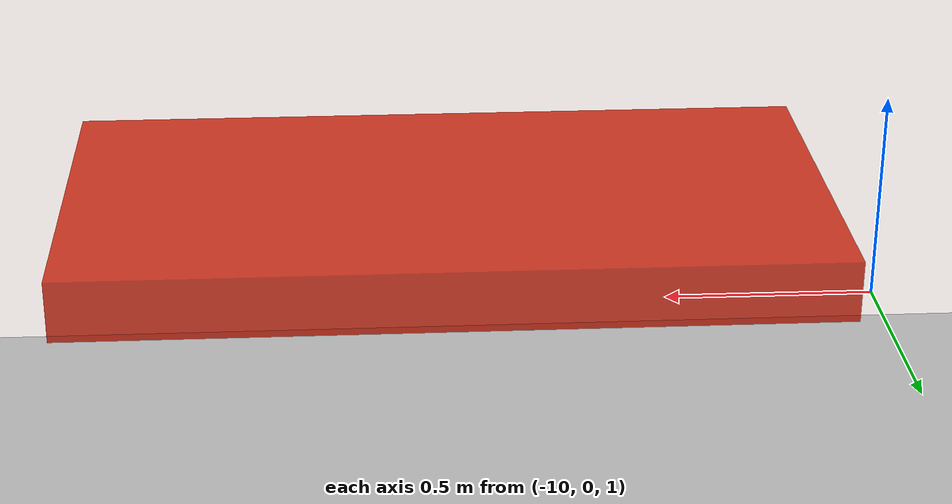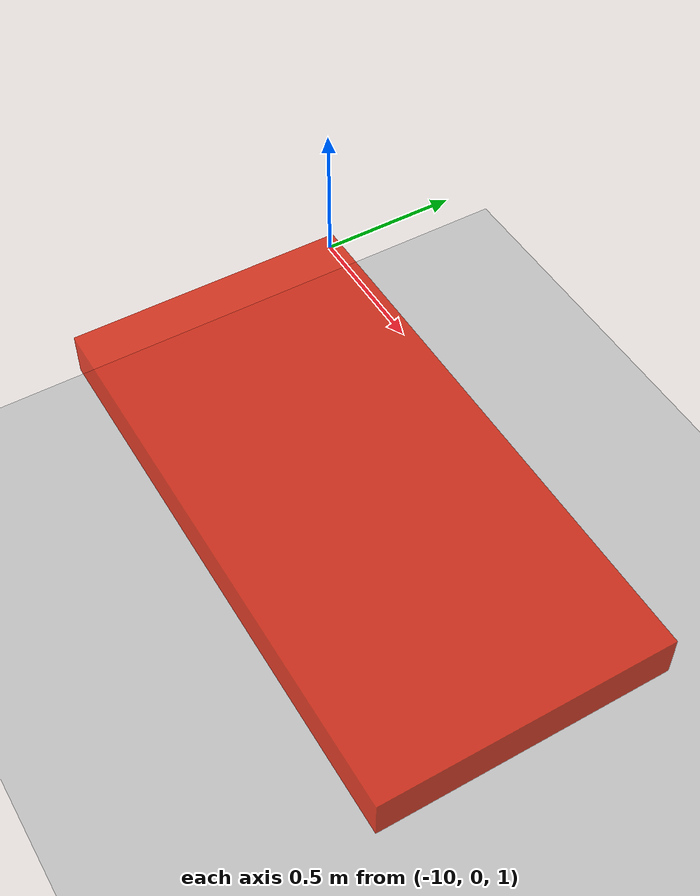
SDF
<sdf version="1.9">
 <world name="default">
  <gravity>0 0 -9.8</gravity>
  <magnetic_field>6e-06 2.3e-05 -4.2e-05</magnetic_field>
  <atmosphere type="adiabatic"/>
  <physics type="ode">
   <max_step_size>0.001</max_step_size>
   <real_time_factor>1</real_time_factor>
   <real_time_update_rate>1000</real_time_update_rate>
  </physics>
  <scene><ambient>0.4 0.4 0.4 1</ambient><background>0.7 0.7 0.7 1</background><shadows>true</shadows></scene>
  <model name="ground_plane">
   <static>true</static>
   <link name="link">
    <collision name="collision">
     <geometry><plane><normal>0 0 1</normal><size>5 1</size></plane></geometry>
    </collision>
    <visual name="visual">
     <geometry><plane><normal>0 0 1</normal><size>100 100</size></plane></geometry>
     <material>
      <ambient>0.8 0.8 0.8 1</ambient>
      <diffuse>0.8 0.8 0.8 1</diffuse>
      <specular>0.8 0.8 0.8 1</specular>
     </material>
     <surface><contact><collide_bitmask>0x01</collide_bitmask></contact></surface>
    </visual>
    <inertial>
     <mass>1</mass>
     <inertia><ixx>1</ixx><ixy>0</ixy><ixz>0</ixz><iyy>1</iyy><iyz>0</iyz><izz>1</izz></inertia>
    </inertial>
   </link>
  </model>
  <model name="t1">
   <link name="link_0">
    <inertial>
     <mass>0.31376100000000001</mass>
     <inertia>
      <ixx>0.0268159</ixx>
      <ixy>0</ixy>
      <ixz>0</ixz>
      <iyy>0.101261</iyy>
      <iyz>0</iyz>
      <izz>0.12673899999999999</izz>
     </inertia>
    </inertial>
    <visual name="visual">
     <geometry><box><size>1.96143 1 0.159969</size></box></geometry>
     <material>
      <ambient>0.9 0.1 0 0.8</ambient>
      <diffuse>0.9 0.1 0 0.8</diffuse>
      <specular>0.9 0.1 0 0.8</specular>
     </material>
    </visual>
    <collision name="collision">
     <geometry><box><size>1.96143 1 0.159969</size></box></geometry>
     <surface>
      <friction>
       <ode><mu>1</mu><mu2>1</mu2><fdir1>0 0 0</fdir1><slip1>0</slip1><slip2>0</slip2></ode>
       <torsional>
        <coefficient>1</coefficient>
        <patch_radius>0</patch_radius>
        <surface_radius>0</surface_radius>
        <use_patch_radius>true</use_patch_radius>
        <ode><slip>0</slip></ode>
       </torsional>
      </friction>
      <bounce><restitution_coefficient>0</restitution_coefficient><threshold>1000000</threshold></bounce>
      <contact>
       <collide_without_contact>false</collide_without_contact>
       <collide_without_contact_bitmask>1</collide_without_contact_bitmask>
       <collide_bitmask>1</collide_bitmask>
       <ode>
        <soft_cfm>0</soft_cfm>
        <soft_erp>0.20000000000000001</soft_erp>
        <kp>10000000000000</kp>
        <kd>1</kd>
        <max_vel>0.01</max_vel>
        <min_depth>0</min_depth>
       </ode>
       <bullet>
        <split_impulse>true</split_impulse>
        <split_impulse_penetration_threshold>-0.01</split_impulse_penetration_threshold>
        <soft_cfm>0</soft_cfm>
        <soft_erp>0.20000000000000001</soft_erp>
        <kp>10000000000000</kp>
        <kd>1</kd>
       </bullet>
      </contact>
     </surface>
    </collision>
   </link>
   <static>false</static>
   <pose>-9 -0.5 1 0 -0 0</pose>
  </model>
  <light name="sun" type="directional">
   <pose>0 0 10 0 -0 0</pose>
   <intensity>1</intensity>
   <direction>-0.5 0.1 -0.9</direction>
   <diffuse>0.8 0.8 0.8 1</diffuse>
   <specular>0.2 0.2 0.2 1</specular>
   <attenuation>
    <range>1000</range>
    <linear>0.01</linear>
    <constant>0.90000000000000002</constant>
    <quadratic>0.001</quadratic>
   </attenuation>
   <spot><inner_angle>0</inner_angle><outer_angle>0</outer_angle><falloff>0</falloff></spot>
  </light>
 </world>
</sdf>
